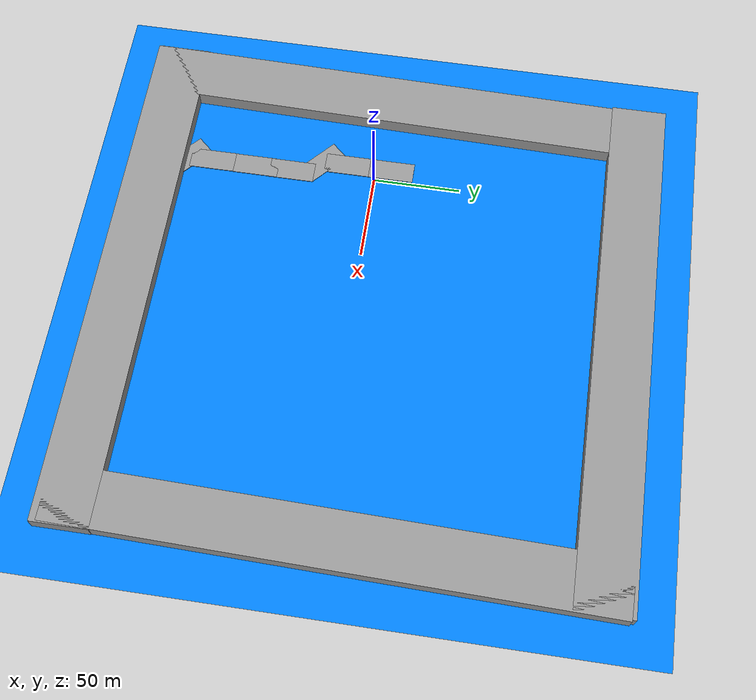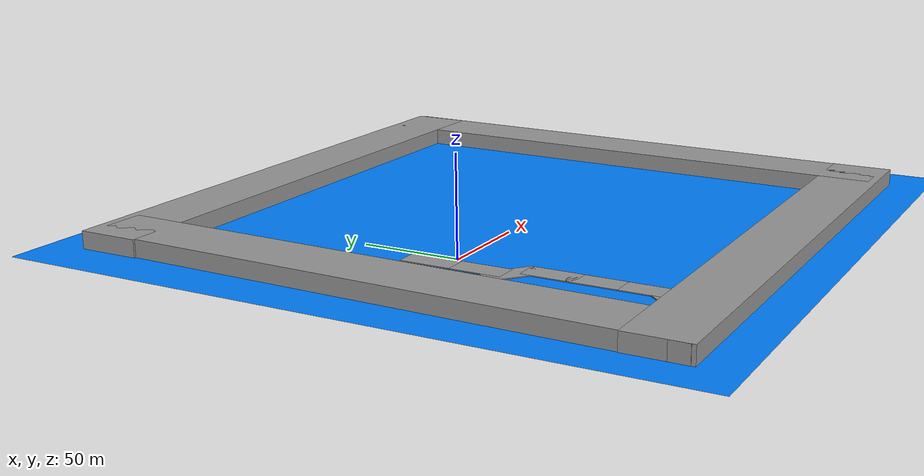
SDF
<sdf version="1.7">
 <world name="default">
  <model name="ground_plane">
   <static>1</static>
   <link name="link">
    <collision name="collision">
     <geometry><plane><normal>0 0 1</normal><size>1000 1000</size></plane></geometry>
     <surface><friction><ode><mu>100</mu><mu2>50</mu2></ode></friction></surface>
    </collision>
    <visual name="visual">
     <cast_shadows>0</cast_shadows>
     <geometry><plane><normal>0 0 1</normal><size>1000 1000</size></plane></geometry>
     <material>
      <ambient>0 0.5 1 1</ambient>
      <diffuse>0 0.5 1 1</diffuse>
      <specular>0.1 0.1 0.1 1</specular>
      <emissive>0 0 0 0</emissive>
     </material>
    </visual>
   </link>
  </model>
  <model name="ground">
   <link name="link">
    <inertial>
     <mass>1</mass>
     <inertia>
      <ixx>0.166667</ixx>
      <ixy>0</ixy>
      <ixz>0</ixz>
      <iyy>0.166667</iyy>
      <iyz>0</iyz>
      <izz>0.166667</izz>
     </inertia>
    </inertial>
    <pose>0 2.71082 0 0 -0 0</pose>
    <visual name="visual">
     <geometry><box><size>12.2775 26.0732 0.428308</size></box></geometry>
     <material>
      <lighting>1</lighting>
      <script><uri>file://media/materials/scripts/gazebo.material</uri><name>Gazebo/Grey</name></script>
      <shader type="pixel"/>
     </material>
    </visual>
    <collision name="collision">
     <geometry><box><size>12.2775 26.0732 0.428308</size></box></geometry>
     <surface>
      <friction>
       <ode><mu>1</mu><mu2>1</mu2><fdir1>0 0 0</fdir1><slip1>0</slip1><slip2>0</slip2></ode>
       <torsional>
        <coefficient>1</coefficient>
        <patch_radius>0</patch_radius>
        <surface_radius>0</surface_radius>
        <use_patch_radius>1</use_patch_radius>
        <ode><slip>0</slip></ode>
       </torsional>
      </friction>
      <bounce><restitution_coefficient>0</restitution_coefficient><threshold>1e+06</threshold></bounce>
      <contact>
       <collide_without_contact>0</collide_without_contact>
       <collide_without_contact_bitmask>1</collide_without_contact_bitmask>
       <collide_bitmask>1</collide_bitmask>
       <ode>
        <soft_cfm>0</soft_cfm>
        <soft_erp>0.2</soft_erp>
        <kp>1e+13</kp>
        <kd>1</kd>
        <max_vel>0.01</max_vel>
        <min_depth>0</min_depth>
       </ode>
       <bullet>
        <split_impulse>1</split_impulse>
        <split_impulse_penetration_threshold>-0.01</split_impulse_penetration_threshold>
        <soft_cfm>0</soft_cfm>
        <soft_erp>0.2</soft_erp>
        <kp>1e+13</kp>
        <kd>1</kd>
       </bullet>
      </contact>
     </surface>
    </collision>
   </link>
   <link name="link_clone">
    <inertial>
     <mass>1</mass>
     <inertia>
      <ixx>0.166667</ixx>
      <ixy>0</ixy>
      <ixz>0</ixz>
      <iyy>0.166667</iyy>
      <iyz>0</iyz>
      <izz>0.166667</izz>
     </inertia>
    </inertial>
    <pose>-7.60672 19.8582 0 0 -0 0.838579</pose>
    <visual name="visual">
     <geometry><box><size>12.2775 26.0732 0.428308</size></box></geometry>
     <material>
      <lighting>1</lighting>
      <script><uri>file://media/materials/scripts/gazebo.material</uri><name>Gazebo/Grey</name></script>
      <shader type="pixel"/>
     </material>
    </visual>
    <collision name="collision">
     <geometry><box><size>12.2775 26.0732 0.428308</size></box></geometry>
     <surface>
      <friction>
       <ode><mu>1</mu><mu2>1</mu2><fdir1>0 0 0</fdir1><slip1>0</slip1><slip2>0</slip2></ode>
       <torsional>
        <coefficient>1</coefficient>
        <patch_radius>0</patch_radius>
        <surface_radius>0</surface_radius>
        <use_patch_radius>1</use_patch_radius>
        <ode><slip>0</slip></ode>
       </torsional>
      </friction>
      <bounce><restitution_coefficient>0</restitution_coefficient><threshold>1e+06</threshold></bounce>
      <contact>
       <collide_without_contact>0</collide_without_contact>
       <collide_without_contact_bitmask>1</collide_without_contact_bitmask>
       <collide_bitmask>1</collide_bitmask>
       <ode>
        <soft_cfm>0</soft_cfm>
        <soft_erp>0.2</soft_erp>
        <kp>1e+13</kp>
        <kd>1</kd>
        <max_vel>0.01</max_vel>
        <min_depth>0</min_depth>
       </ode>
       <bullet>
        <split_impulse>1</split_impulse>
        <split_impulse_penetration_threshold>-0.01</split_impulse_penetration_threshold>
        <soft_cfm>0</soft_cfm>
        <soft_erp>0.2</soft_erp>
        <kp>1e+13</kp>
        <kd>1</kd>
       </bullet>
      </contact>
     </surface>
    </collision>
   </link>
   <link name="link_clone_0">
    <inertial>
     <mass>1</mass>
     <inertia>
      <ixx>0.166667</ixx>
      <ixy>0</ixy>
      <ixz>0</ixz>
      <iyy>0.166667</iyy>
      <iyz>0</iyz>
      <izz>0.166667</izz>
     </inertia>
    </inertial>
    <pose>-8.13936 34.3499 0 0 -0 0</pose>
    <visual name="visual">
     <geometry><box><size>12.2775 26.0732 0.428308</size></box></geometry>
     <material>
      <lighting>1</lighting>
      <script><uri>file://media/materials/scripts/gazebo.material</uri><name>Gazebo/Grey</name></script>
      <shader type="pixel"/>
     </material>
    </visual>
    <collision name="collision">
     <geometry><box><size>12.2775 26.0732 0.428308</size></box></geometry>
     <surface>
      <friction>
       <ode><mu>1</mu><mu2>1</mu2><fdir1>0 0 0</fdir1><slip1>0</slip1><slip2>0</slip2></ode>
       <torsional>
        <coefficient>1</coefficient>
        <patch_radius>0</patch_radius>
        <surface_radius>0</surface_radius>
        <use_patch_radius>1</use_patch_radius>
        <ode><slip>0</slip></ode>
       </torsional>
      </friction>
      <bounce><restitution_coefficient>0</restitution_coefficient><threshold>1e+06</threshold></bounce>
      <contact>
       <collide_without_contact>0</collide_without_contact>
       <collide_without_contact_bitmask>1</collide_without_contact_bitmask>
       <collide_bitmask>1</collide_bitmask>
       <ode>
        <soft_cfm>0</soft_cfm>
        <soft_erp>0.2</soft_erp>
        <kp>1e+13</kp>
        <kd>1</kd>
        <max_vel>0.01</max_vel>
        <min_depth>0</min_depth>
       </ode>
       <bullet>
        <split_impulse>1</split_impulse>
        <split_impulse_penetration_threshold>-0.01</split_impulse_penetration_threshold>
        <soft_cfm>0</soft_cfm>
        <soft_erp>0.2</soft_erp>
        <kp>1e+13</kp>
        <kd>1</kd>
       </bullet>
      </contact>
     </surface>
    </collision>
   </link>
   <link name="link_clone_0_clone">
    <inertial>
     <mass>1</mass>
     <inertia>
      <ixx>0.166667</ixx>
      <ixy>0</ixy>
      <ixz>0</ixz>
      <iyy>0.166667</iyy>
      <iyz>0</iyz>
      <izz>0.166667</izz>
     </inertia>
    </inertial>
    <pose>-8.03787 60.3254 0 0 -0 0</pose>
    <visual name="visual">
     <geometry><box><size>12.2775 26.0732 0.428308</size></box></geometry>
     <material>
      <lighting>1</lighting>
      <script><uri>file://media/materials/scripts/gazebo.material</uri><name>Gazebo/Grey</name></script>
      <shader type="pixel"/>
     </material>
    </visual>
    <collision name="collision">
     <geometry><box><size>12.2775 26.0732 0.428308</size></box></geometry>
     <surface>
      <friction>
       <ode><mu>1</mu><mu2>1</mu2><fdir1>0 0 0</fdir1><slip1>0</slip1><slip2>0</slip2></ode>
       <torsional>
        <coefficient>1</coefficient>
        <patch_radius>0</patch_radius>
        <surface_radius>0</surface_radius>
        <use_patch_radius>1</use_patch_radius>
        <ode><slip>0</slip></ode>
       </torsional>
      </friction>
      <bounce><restitution_coefficient>0</restitution_coefficient><threshold>1e+06</threshold></bounce>
      <contact>
       <collide_without_contact>0</collide_without_contact>
       <collide_without_contact_bitmask>1</collide_without_contact_bitmask>
       <collide_bitmask>1</collide_bitmask>
       <ode>
        <soft_cfm>0</soft_cfm>
        <soft_erp>0.2</soft_erp>
        <kp>1e+13</kp>
        <kd>1</kd>
        <max_vel>0.01</max_vel>
        <min_depth>0</min_depth>
       </ode>
       <bullet>
        <split_impulse>1</split_impulse>
        <split_impulse_penetration_threshold>-0.01</split_impulse_penetration_threshold>
        <soft_cfm>0</soft_cfm>
        <soft_erp>0.2</soft_erp>
        <kp>1e+13</kp>
        <kd>1</kd>
       </bullet>
      </contact>
     </surface>
    </collision>
   </link>
   <static>1</static>
   <pose>0.250638 -51.022 0.106728 0 -0 0</pose>
  </model>
  <model name="Untitled"><pose>61.4045 -75.8074 0 0 -0 0</pose><static>1</static></model>
  <model name="boundaries">
   <link name="link">
    <inertial>
     <mass>149705</mass>
     <inertia>
      <ixx>1.54649e+07</ixx>
      <ixy>0</ixy>
      <ixz>0</ixz>
      <iyy>1.13831e+09</iyy>
      <iyz>0</iyz>
      <izz>1.14757e+09</izz>
     </inertia>
    </inertial>
    <pose>-0.277473 10.4919 -0 0 -0 0</pose>
    <visual name="visual">
     <geometry><box><size>301.655 31.4824 15.7637</size></box></geometry>
     <material>
      <script><name>Gazebo/Grey</name><uri>file://media/materials/scripts/gazebo.material</uri></script>
      <shader type="pixel"/>
     </material>
    </visual>
    <collision name="collision">
     <geometry><box><size>301.655 31.4824 15.7637</size></box></geometry>
     <surface>
      <friction>
       <ode><mu>1</mu><mu2>1</mu2><fdir1>0 0 0</fdir1><slip1>0</slip1><slip2>0</slip2></ode>
       <torsional>
        <coefficient>1</coefficient>
        <patch_radius>0</patch_radius>
        <surface_radius>0</surface_radius>
        <use_patch_radius>1</use_patch_radius>
        <ode><slip>0</slip></ode>
       </torsional>
      </friction>
      <bounce><restitution_coefficient>0</restitution_coefficient><threshold>1e+06</threshold></bounce>
      <contact>
       <collide_without_contact>0</collide_without_contact>
       <collide_without_contact_bitmask>1</collide_without_contact_bitmask>
       <collide_bitmask>1</collide_bitmask>
       <ode>
        <soft_cfm>0</soft_cfm>
        <soft_erp>0.2</soft_erp>
        <kp>1e+13</kp>
        <kd>1</kd>
        <max_vel>0.01</max_vel>
        <min_depth>0</min_depth>
       </ode>
       <bullet>
        <split_impulse>1</split_impulse>
        <split_impulse_penetration_threshold>-0.01</split_impulse_penetration_threshold>
        <soft_cfm>0</soft_cfm>
        <soft_erp>0.2</soft_erp>
        <kp>1e+13</kp>
        <kd>1</kd>
       </bullet>
      </contact>
     </surface>
    </collision>
   </link>
   <link name="link_clone">
    <inertial>
     <mass>149705</mass>
     <inertia>
      <ixx>1.54649e+07</ixx>
      <ixy>0</ixy>
      <ixz>0</ixz>
      <iyy>1.13831e+09</iyy>
      <iyz>0</iyz>
      <izz>1.14757e+09</izz>
     </inertia>
    </inertial>
    <pose>4.44402 286.433 -3e-06 0 -0 0</pose>
    <visual name="visual">
     <geometry><box><size>301.655 31.4824 15.7637</size></box></geometry>
     <material>
      <script><name>Gazebo/Grey</name><uri>file://media/materials/scripts/gazebo.material</uri></script>
      <shader type="pixel"/>
     </material>
    </visual>
    <collision name="collision">
     <geometry><box><size>301.655 31.4824 15.7637</size></box></geometry>
     <surface>
      <friction>
       <ode><mu>1</mu><mu2>1</mu2><fdir1>0 0 0</fdir1><slip1>0</slip1><slip2>0</slip2></ode>
       <torsional>
        <coefficient>1</coefficient>
        <patch_radius>0</patch_radius>
        <surface_radius>0</surface_radius>
        <use_patch_radius>1</use_patch_radius>
        <ode><slip>0</slip></ode>
       </torsional>
      </friction>
      <bounce><restitution_coefficient>0</restitution_coefficient><threshold>1e+06</threshold></bounce>
      <contact>
       <collide_without_contact>0</collide_without_contact>
       <collide_without_contact_bitmask>1</collide_without_contact_bitmask>
       <collide_bitmask>1</collide_bitmask>
       <ode>
        <soft_cfm>0</soft_cfm>
        <soft_erp>0.2</soft_erp>
        <kp>1e+13</kp>
        <kd>1</kd>
        <max_vel>0.01</max_vel>
        <min_depth>0</min_depth>
       </ode>
       <bullet>
        <split_impulse>1</split_impulse>
        <split_impulse_penetration_threshold>-0.01</split_impulse_penetration_threshold>
        <soft_cfm>0</soft_cfm>
        <soft_erp>0.2</soft_erp>
        <kp>1e+13</kp>
        <kd>1</kd>
       </bullet>
      </contact>
     </surface>
    </collision>
   </link>
   <link name="link_clone_clone">
    <inertial>
     <mass>149705</mass>
     <inertia>
      <ixx>1.54649e+07</ixx>
      <ixy>0</ixy>
      <ixz>0</ixz>
      <iyy>1.13831e+09</iyy>
      <iyz>0</iyz>
      <izz>1.14757e+09</izz>
     </inertia>
    </inertial>
    <pose>137.163 149.498 -5e-06 0 -0 1.54926</pose>
    <visual name="visual">
     <geometry><box><size>301.655 31.4824 15.7637</size></box></geometry>
     <material>
      <script><name>Gazebo/Grey</name><uri>file://media/materials/scripts/gazebo.material</uri></script>
      <shader type="pixel"/>
     </material>
    </visual>
    <collision name="collision">
     <geometry><box><size>301.655 31.4824 15.7637</size></box></geometry>
     <surface>
      <friction>
       <ode><mu>1</mu><mu2>1</mu2><fdir1>0 0 0</fdir1><slip1>0</slip1><slip2>0</slip2></ode>
       <torsional>
        <coefficient>1</coefficient>
        <patch_radius>0</patch_radius>
        <surface_radius>0</surface_radius>
        <use_patch_radius>1</use_patch_radius>
        <ode><slip>0</slip></ode>
       </torsional>
      </friction>
      <bounce><restitution_coefficient>0</restitution_coefficient><threshold>1e+06</threshold></bounce>
      <contact>
       <collide_without_contact>0</collide_without_contact>
       <collide_without_contact_bitmask>1</collide_without_contact_bitmask>
       <collide_bitmask>1</collide_bitmask>
       <ode>
        <soft_cfm>0</soft_cfm>
        <soft_erp>0.2</soft_erp>
        <kp>1e+13</kp>
        <kd>1</kd>
        <max_vel>0.01</max_vel>
        <min_depth>0</min_depth>
       </ode>
       <bullet>
        <split_impulse>1</split_impulse>
        <split_impulse_penetration_threshold>-0.01</split_impulse_penetration_threshold>
        <soft_cfm>0</soft_cfm>
        <soft_erp>0.2</soft_erp>
        <kp>1e+13</kp>
        <kd>1</kd>
       </bullet>
      </contact>
     </surface>
    </collision>
   </link>
   <link name="link_clone_clone_clone">
    <inertial>
     <mass>149705</mass>
     <inertia>
      <ixx>1.54649e+07</ixx>
      <ixy>0</ixy>
      <ixz>0</ixz>
      <iyy>1.13831e+09</iyy>
      <iyz>0</iyz>
      <izz>1.14757e+09</izz>
     </inertia>
    </inertial>
    <pose>-132.325 147.143 -6e-06 0 -0 1.54926</pose>
    <visual name="visual">
     <geometry><box><size>301.655 31.4824 15.7637</size></box></geometry>
     <material>
      <script><name>Gazebo/Grey</name><uri>file://media/materials/scripts/gazebo.material</uri></script>
      <shader type="pixel"/>
     </material>
    </visual>
    <collision name="collision">
     <geometry><box><size>301.655 31.4824 15.7637</size></box></geometry>
     <surface>
      <friction>
       <ode><mu>1</mu><mu2>1</mu2><fdir1>0 0 0</fdir1><slip1>0</slip1><slip2>0</slip2></ode>
       <torsional>
        <coefficient>1</coefficient>
        <patch_radius>0</patch_radius>
        <surface_radius>0</surface_radius>
        <use_patch_radius>1</use_patch_radius>
        <ode><slip>0</slip></ode>
       </torsional>
      </friction>
      <bounce><restitution_coefficient>0</restitution_coefficient><threshold>1e+06</threshold></bounce>
      <contact>
       <collide_without_contact>0</collide_without_contact>
       <collide_without_contact_bitmask>1</collide_without_contact_bitmask>
       <collide_bitmask>1</collide_bitmask>
       <ode>
        <soft_cfm>0</soft_cfm>
        <soft_erp>0.2</soft_erp>
        <kp>1e+13</kp>
        <kd>1</kd>
        <max_vel>0.01</max_vel>
        <min_depth>0</min_depth>
       </ode>
       <bullet>
        <split_impulse>1</split_impulse>
        <split_impulse_penetration_threshold>-0.01</split_impulse_penetration_threshold>
        <soft_cfm>0</soft_cfm>
        <soft_erp>0.2</soft_erp>
        <kp>1e+13</kp>
        <kd>1</kd>
       </bullet>
      </contact>
     </surface>
    </collision>
   </link>
   <static>1</static>
   <pose>80.2565 -137.242 0.5 0 -0 0</pose>
  </model>
  <model name="ground_clone_1">
   <link name="link">
    <inertial>
     <mass>1</mass>
     <inertia>
      <ixx>0.166667</ixx>
      <ixy>0</ixy>
      <ixz>0</ixz>
      <iyy>0.166667</iyy>
      <iyz>0</iyz>
      <izz>0.166667</izz>
     </inertia>
    </inertial>
    <pose>0 2.71082 0 0 -0 0</pose>
    <visual name="visual">
     <geometry><box><size>12.2775 26.0732 0.428308</size></box></geometry>
     <material>
      <lighting>1</lighting>
      <script><uri>file://media/materials/scripts/gazebo.material</uri><name>Gazebo/Grey</name></script>
      <shader type="pixel"/>
     </material>
    </visual>
    <collision name="collision">
     <geometry><box><size>12.2775 26.0732 0.428308</size></box></geometry>
     <surface>
      <friction>
       <ode><mu>1</mu><mu2>1</mu2><fdir1>0 0 0</fdir1><slip1>0</slip1><slip2>0</slip2></ode>
       <torsional>
        <coefficient>1</coefficient>
        <patch_radius>0</patch_radius>
        <surface_radius>0</surface_radius>
        <use_patch_radius>1</use_patch_radius>
        <ode><slip>0</slip></ode>
       </torsional>
      </friction>
      <bounce><restitution_coefficient>0</restitution_coefficient><threshold>1e+06</threshold></bounce>
      <contact>
       <collide_without_contact>0</collide_without_contact>
       <collide_without_contact_bitmask>1</collide_without_contact_bitmask>
       <collide_bitmask>1</collide_bitmask>
       <ode>
        <soft_cfm>0</soft_cfm>
        <soft_erp>0.2</soft_erp>
        <kp>1e+13</kp>
        <kd>1</kd>
        <max_vel>0.01</max_vel>
        <min_depth>0</min_depth>
       </ode>
       <bullet>
        <split_impulse>1</split_impulse>
        <split_impulse_penetration_threshold>-0.01</split_impulse_penetration_threshold>
        <soft_cfm>0</soft_cfm>
        <soft_erp>0.2</soft_erp>
        <kp>1e+13</kp>
        <kd>1</kd>
       </bullet>
      </contact>
     </surface>
    </collision>
   </link>
   <link name="link_clone">
    <inertial>
     <mass>1</mass>
     <inertia>
      <ixx>0.166667</ixx>
      <ixy>0</ixy>
      <ixz>0</ixz>
      <iyy>0.166667</iyy>
      <iyz>0</iyz>
      <izz>0.166667</izz>
     </inertia>
    </inertial>
    <pose>-7.60672 19.8582 0 0 -0 0.838579</pose>
    <visual name="visual">
     <geometry><box><size>12.2775 26.0732 0.428308</size></box></geometry>
     <material>
      <lighting>1</lighting>
      <script><uri>file://media/materials/scripts/gazebo.material</uri><name>Gazebo/Grey</name></script>
      <shader type="pixel"/>
     </material>
    </visual>
    <collision name="collision">
     <geometry><box><size>12.2775 26.0732 0.428308</size></box></geometry>
     <surface>
      <friction>
       <ode><mu>1</mu><mu2>1</mu2><fdir1>0 0 0</fdir1><slip1>0</slip1><slip2>0</slip2></ode>
       <torsional>
        <coefficient>1</coefficient>
        <patch_radius>0</patch_radius>
        <surface_radius>0</surface_radius>
        <use_patch_radius>1</use_patch_radius>
        <ode><slip>0</slip></ode>
       </torsional>
      </friction>
      <bounce><restitution_coefficient>0</restitution_coefficient><threshold>1e+06</threshold></bounce>
      <contact>
       <collide_without_contact>0</collide_without_contact>
       <collide_without_contact_bitmask>1</collide_without_contact_bitmask>
       <collide_bitmask>1</collide_bitmask>
       <ode>
        <soft_cfm>0</soft_cfm>
        <soft_erp>0.2</soft_erp>
        <kp>1e+13</kp>
        <kd>1</kd>
        <max_vel>0.01</max_vel>
        <min_depth>0</min_depth>
       </ode>
       <bullet>
        <split_impulse>1</split_impulse>
        <split_impulse_penetration_threshold>-0.01</split_impulse_penetration_threshold>
        <soft_cfm>0</soft_cfm>
        <soft_erp>0.2</soft_erp>
        <kp>1e+13</kp>
        <kd>1</kd>
       </bullet>
      </contact>
     </surface>
    </collision>
   </link>
   <link name="link_clone_0">
    <inertial>
     <mass>1</mass>
     <inertia>
      <ixx>0.166667</ixx>
      <ixy>0</ixy>
      <ixz>0</ixz>
      <iyy>0.166667</iyy>
      <iyz>0</iyz>
      <izz>0.166667</izz>
     </inertia>
    </inertial>
    <pose>-8.13936 34.3499 0 0 -0 0</pose>
    <visual name="visual">
     <geometry><box><size>12.2775 26.0732 0.428308</size></box></geometry>
     <material>
      <lighting>1</lighting>
      <script><uri>file://media/materials/scripts/gazebo.material</uri><name>Gazebo/Grey</name></script>
      <shader type="pixel"/>
     </material>
    </visual>
    <collision name="collision">
     <geometry><box><size>12.2775 26.0732 0.428308</size></box></geometry>
     <surface>
      <friction>
       <ode><mu>1</mu><mu2>1</mu2><fdir1>0 0 0</fdir1><slip1>0</slip1><slip2>0</slip2></ode>
       <torsional>
        <coefficient>1</coefficient>
        <patch_radius>0</patch_radius>
        <surface_radius>0</surface_radius>
        <use_patch_radius>1</use_patch_radius>
        <ode><slip>0</slip></ode>
       </torsional>
      </friction>
      <bounce><restitution_coefficient>0</restitution_coefficient><threshold>1e+06</threshold></bounce>
      <contact>
       <collide_without_contact>0</collide_without_contact>
       <collide_without_contact_bitmask>1</collide_without_contact_bitmask>
       <collide_bitmask>1</collide_bitmask>
       <ode>
        <soft_cfm>0</soft_cfm>
        <soft_erp>0.2</soft_erp>
        <kp>1e+13</kp>
        <kd>1</kd>
        <max_vel>0.01</max_vel>
        <min_depth>0</min_depth>
       </ode>
       <bullet>
        <split_impulse>1</split_impulse>
        <split_impulse_penetration_threshold>-0.01</split_impulse_penetration_threshold>
        <soft_cfm>0</soft_cfm>
        <soft_erp>0.2</soft_erp>
        <kp>1e+13</kp>
        <kd>1</kd>
       </bullet>
      </contact>
     </surface>
    </collision>
   </link>
   <link name="link_clone_0_clone">
    <inertial>
     <mass>1</mass>
     <inertia>
      <ixx>0.166667</ixx>
      <ixy>0</ixy>
      <ixz>0</ixz>
      <iyy>0.166667</iyy>
      <iyz>0</iyz>
      <izz>0.166667</izz>
     </inertia>
    </inertial>
    <pose>-8.03787 60.3254 0 0 -0 0</pose>
    <visual name="visual">
     <geometry><box><size>12.2775 26.0732 0.428308</size></box></geometry>
     <material>
      <lighting>1</lighting>
      <script><uri>file://media/materials/scripts/gazebo.material</uri><name>Gazebo/Grey</name></script>
      <shader type="pixel"/>
     </material>
    </visual>
    <collision name="collision">
     <geometry><box><size>12.2775 26.0732 0.428308</size></box></geometry>
     <surface>
      <friction>
       <ode><mu>1</mu><mu2>1</mu2><fdir1>0 0 0</fdir1><slip1>0</slip1><slip2>0</slip2></ode>
       <torsional>
        <coefficient>1</coefficient>
        <patch_radius>0</patch_radius>
        <surface_radius>0</surface_radius>
        <use_patch_radius>1</use_patch_radius>
        <ode><slip>0</slip></ode>
       </torsional>
      </friction>
      <bounce><restitution_coefficient>0</restitution_coefficient><threshold>1e+06</threshold></bounce>
      <contact>
       <collide_without_contact>0</collide_without_contact>
       <collide_without_contact_bitmask>1</collide_without_contact_bitmask>
       <collide_bitmask>1</collide_bitmask>
       <ode>
        <soft_cfm>0</soft_cfm>
        <soft_erp>0.2</soft_erp>
        <kp>1e+13</kp>
        <kd>1</kd>
        <max_vel>0.01</max_vel>
        <min_depth>0</min_depth>
       </ode>
       <bullet>
        <split_impulse>1</split_impulse>
        <split_impulse_penetration_threshold>-0.01</split_impulse_penetration_threshold>
        <soft_cfm>0</soft_cfm>
        <soft_erp>0.2</soft_erp>
        <kp>1e+13</kp>
        <kd>1</kd>
       </bullet>
      </contact>
     </surface>
    </collision>
   </link>
   <static>1</static>
   <pose>8.16305 -129.909 0.106728 0 -0 0</pose>
  </model>
 </world>
</sdf>
